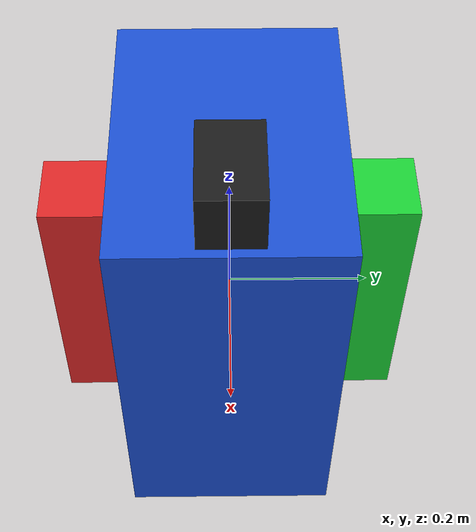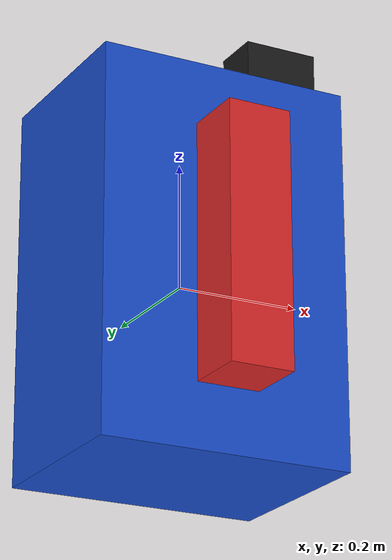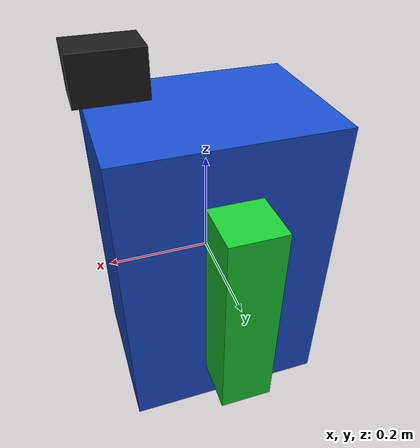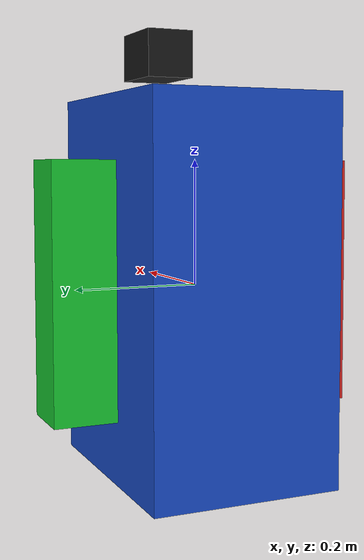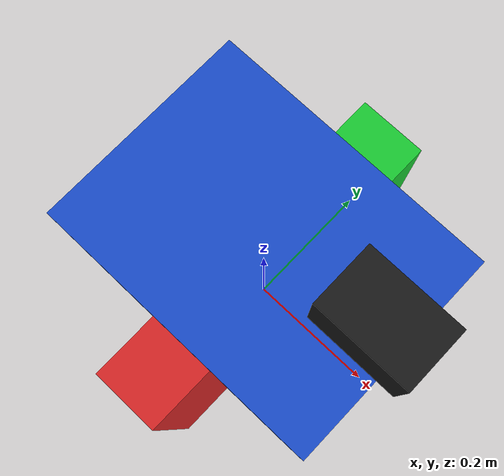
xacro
<?xml version="1.0"?>
<robot name="simple_robot_step5" xmlns:xacro="http://www.ros.org/wiki/xacro">

  <xacro:property name="torso_x" value="0.4"/>
  <xacro:property name="torso_y" value="0.3"/>
  <xacro:property name="torso_z" value="0.6"/>
  <xacro:property name="torso_mass" value="5.0"/>

  <xacro:property name="arm_x" value="0.1"/>
  <xacro:property name="arm_y" value="0.1"/>
  <xacro:property name="arm_z" value="0.4"/>
  <xacro:property name="arm_mass" value="1.0"/>

  <xacro:property name="camera_x" value="0.12"/>
  <xacro:property name="camera_y" value="0.08"/>
  <xacro:property name="camera_z" value="0.08"/>
  <xacro:property name="camera_mass" value="0.3"/>

  <link name="torso_link">

    <visual>
      <origin xyz="0 0 0" rpy="0 0 0"/>
      <geometry>
        <box size="${torso_x} ${torso_y} ${torso_z}"/>
      </geometry>
      <material name="blue">
        <color rgba="0.1 0.3 0.8 1.0"/>
      </material>
    </visual>

    <collision>
      <origin xyz="0 0 0" rpy="0 0 0"/>
      <geometry>
        <box size="${torso_x} ${torso_y} ${torso_z}"/>
      </geometry>
    </collision>

    <inertial>
      <origin xyz="0 0 0" rpy="0 0 0"/>
      <mass value="${torso_mass}"/>
      <inertia
        ixx="0.1875"
        ixy="0.0"
        ixz="0.0"
        iyy="0.2167"
        iyz="0.0"
        izz="0.1042"/>
    </inertial>

  </link>

  <link name="left_arm_link">

    <visual>
      <origin xyz="0 0 -0.2" rpy="0 0 0"/>
      <geometry>
        <box size="${arm_x} ${arm_y} ${arm_z}"/>
      </geometry>
      <material name="green">
        <color rgba="0.1 0.8 0.2 1.0"/>
      </material>
    </visual>

    <collision>
      <origin xyz="0 0 -0.2" rpy="0 0 0"/>
      <geometry>
        <box size="${arm_x} ${arm_y} ${arm_z}"/>
      </geometry>
    </collision>

    <inertial>
      <origin xyz="0 0 -0.2" rpy="0 0 0"/>
      <mass value="${arm_mass}"/>
      <inertia
        ixx="0.0141667"
        ixy="0.0"
        ixz="0.0"
        iyy="0.0141667"
        iyz="0.0"
        izz="0.0016667"/>
    </inertial>

  </link>

  <link name="right_arm_link">

    <visual>
      <origin xyz="0 0 -0.2" rpy="0 0 0"/>
      <geometry>
        <box size="${arm_x} ${arm_y} ${arm_z}"/>
      </geometry>
      <material name="red">
        <color rgba="0.85 0.15 0.15 1.0"/>
      </material>
    </visual>

    <collision>
      <origin xyz="0 0 -0.2" rpy="0 0 0"/>
      <geometry>
        <box size="${arm_x} ${arm_y} ${arm_z}"/>
      </geometry>
    </collision>

    <inertial>
      <origin xyz="0 0 -0.2" rpy="0 0 0"/>
      <mass value="${arm_mass}"/>
      <inertia
        ixx="0.0141667"
        ixy="0.0"
        ixz="0.0"
        iyy="0.0141667"
        iyz="0.0"
        izz="0.0016667"/>
    </inertial>

  </link>

  <link name="camera_link">

    <visual>
      <origin xyz="0 0 0" rpy="0 0 0"/>
      <geometry>
        <box size="${camera_x} ${camera_y} ${camera_z}"/>
      </geometry>
      <material name="black">
        <color rgba="0.1 0.1 0.1 1.0"/>
      </material>
    </visual>

    <collision>
      <origin xyz="0 0 0" rpy="0 0 0"/>
      <geometry>
        <box size="${camera_x} ${camera_y} ${camera_z}"/>
      </geometry>
    </collision>

    <inertial>
      <origin xyz="0 0 0" rpy="0 0 0"/>
      <mass value="${camera_mass}"/>
      <inertia
        ixx="0.00026"
        ixy="0.0"
        ixz="0.0"
        iyy="0.00052"
        iyz="0.0"
        izz="0.00052"/>
    </inertial>

  </link>

  <joint name="left_shoulder_joint" type="revolute">
    <parent link="torso_link"/>
    <child link="left_arm_link"/>
    <origin xyz="0 0.2 0.2" rpy="0 0 0"/>
    <axis xyz="0 1 0"/>
    <limit lower="-1.57" upper="1.57" effort="10.0" velocity="1.0"/>
  </joint>

  <joint name="right_shoulder_joint" type="revolute">
    <parent link="torso_link"/>
    <child link="right_arm_link"/>
    <origin xyz="0 -0.2 0.2" rpy="0 0 0"/>
    <axis xyz="0 1 0"/>
    <limit lower="-1.57" upper="1.57" effort="10.0" velocity="1.0"/>
  </joint>

  <joint name="camera_joint" type="fixed">
    <parent link="torso_link"/>
    <child link="camera_link"/>
    <origin xyz="0.16 0 0.38" rpy="0 0 0"/>
  </joint>

</robot>
